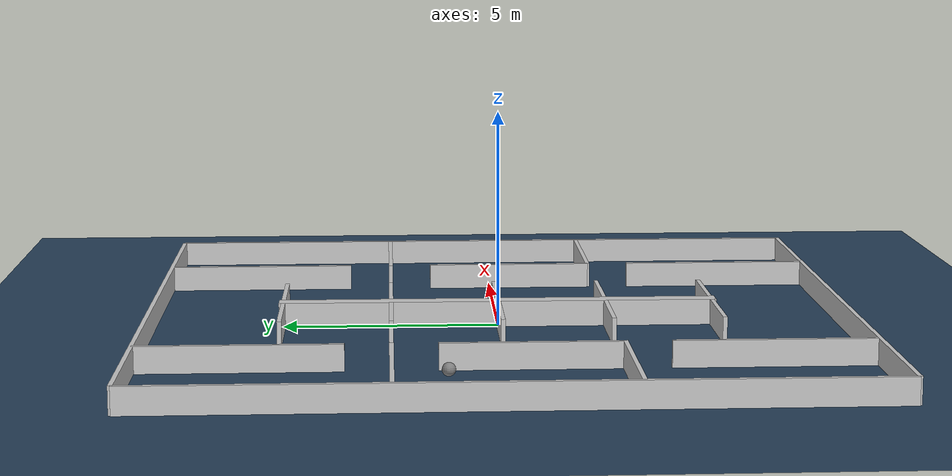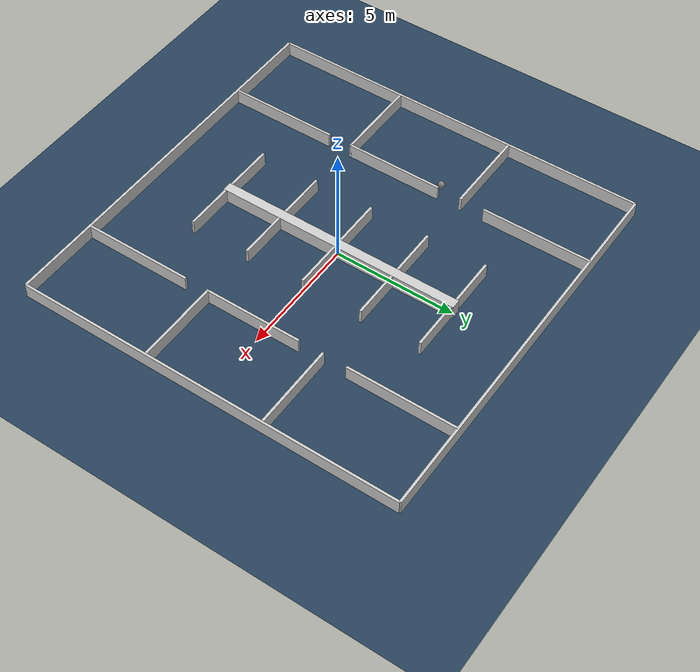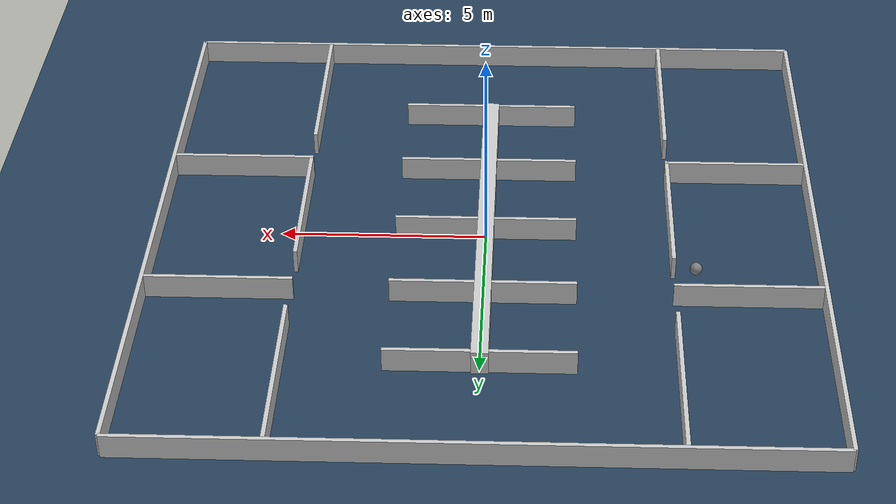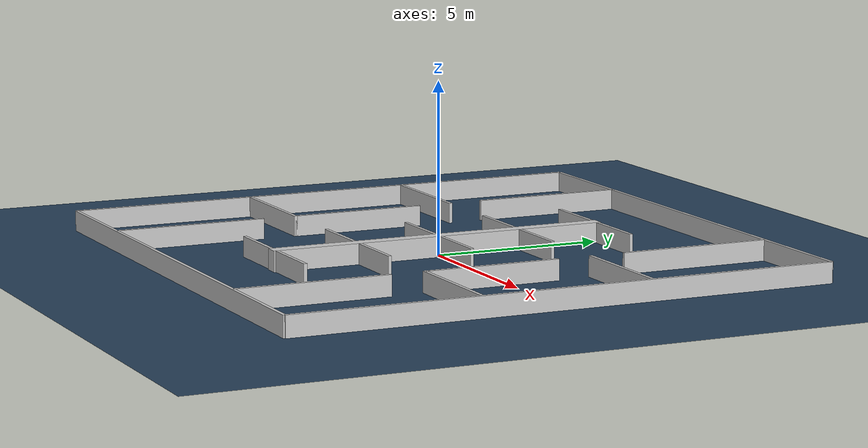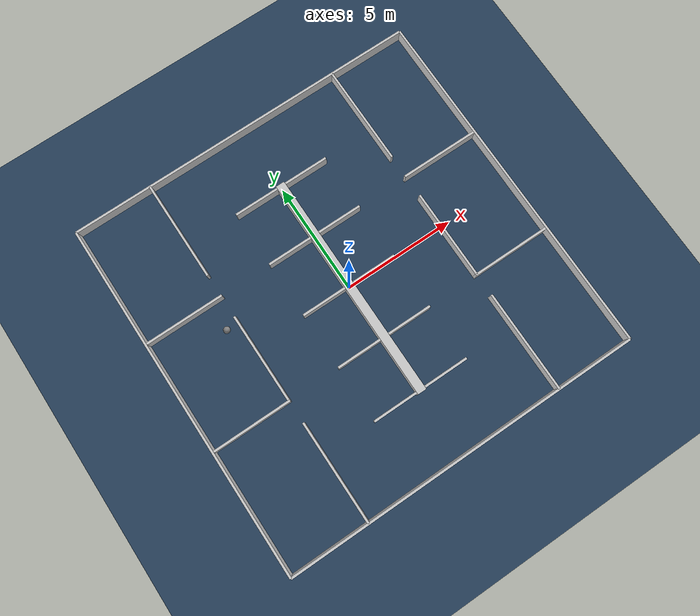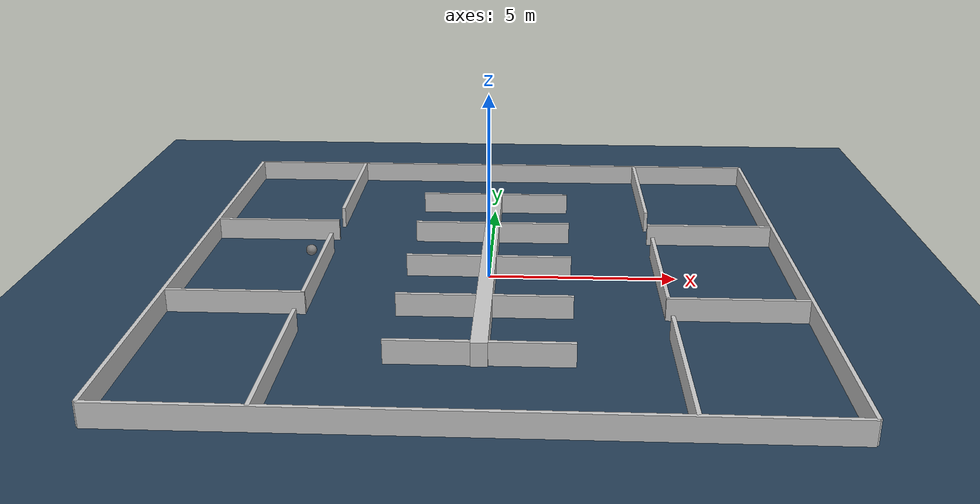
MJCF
<?xml version='1.0' encoding='utf-8'?>
<mujoco model="generated_environment">
  <option timestep="0.01" integrator="RK4" cone="elliptic" />
  <default>
    <geom density="1" />
  </default>
  <asset>
    <texture builtin="gradient" height="3072" rgb1="0.3 0.5 0.7" rgb2="0 0 0" type="skybox" width="512" />
    <texture builtin="checker" height="300" mark="edge" markrgb="0.8 0.8 0.8" name="groundplane" rgb1="0.2 0.3 0.4" rgb2="0.1 0.2 0.3" type="2d" width="300" />
    <material name="groundplane" reflectance="0.2" texrepeat="5 5" texture="groundplane" texuniform="true" />
    <material name="robot" rgba="1.0 1.0 0.0 1.0" />
  </asset>
  <worldbody>
    <light dir="0 0 -1" directional="true" pos="0 0 1.5" />
    <geom condim="4" friction="0.5 0.005 0.001" material="groundplane" name="floor" size="0 0 0.05" type="plane" />
    <body name="walls">
      <geom name="wall_1" condim="4" pos="-8.0 0.0 0.3" rgba="0.800000011920929 0.800000011920929 0.800000011920929 1.0" size="0.05 8.0 0.3" type="box" />
      <geom name="wall_2" condim="4" pos="8.0 0.0 0.3" rgba="0.800000011920929 0.800000011920929 0.800000011920929 1.0" size="0.05 8.0 0.3" type="box" />
      <geom name="wall_3" condim="4" pos="0.0 -8.0 0.3" rgba="0.800000011920929 0.800000011920929 0.800000011920929 1.0" size="8.0 0.05 0.3" type="box" />
      <geom name="wall_4" condim="4" pos="0.0 8.0 0.3" rgba="0.800000011920929 0.800000011920929 0.800000011920929 1.0" size="8.0 0.05 0.3" type="box" />
      <geom name="wall_5" condim="4" pos="-1.2 2.5 0.3" rgba="0.800000011920929 0.800000011920929 0.800000011920929 1.0" size="1.0 0.05 0.3" type="box" />
      <geom name="wall_6" condim="4" pos="1.2 2.5 0.3" rgba="0.800000011920929 0.800000011920929 0.800000011920929 1.0" size="1.0 0.05 0.3" type="box" />
      <geom name="wall_7" condim="4" pos="-1.2 -2.5 0.3" rgba="0.800000011920929 0.800000011920929 0.800000011920929 1.0" size="1.0 0.05 0.3" type="box" />
      <geom name="wall_8" condim="4" pos="1.2 -2.5 0.3" rgba="0.800000011920929 0.800000011920929 0.800000011920929 1.0" size="1.0 0.05 0.3" type="box" />
      <geom name="wall_9" condim="4" pos="-1.2 0.0 0.3" rgba="0.800000011920929 0.800000011920929 0.800000011920929 1.0" size="1.0 0.05 0.3" type="box" />
      <geom name="wall_10" condim="4" pos="1.2 0.0 0.3" rgba="0.800000011920929 0.800000011920929 0.800000011920929 1.0" size="1.0 0.05 0.3" type="box" />
      <geom name="wall_11" condim="4" pos="-1.2 5.0 0.3" rgba="0.800000011920929 0.800000011920929 0.800000011920929 1.0" size="1.0 0.05 0.3" type="box" />
      <geom name="wall_12" condim="4" pos="1.2 5.0 0.3" rgba="0.800000011920929 0.800000011920929 0.800000011920929 1.0" size="1.0 0.05 0.3" type="box" />
      <geom name="wall_13" condim="4" pos="-1.2 -5.0 0.3" rgba="0.800000011920929 0.800000011920929 0.800000011920929 1.0" size="1.0 0.05 0.3" type="box" />
      <geom name="wall_14" condim="4" pos="1.2 -5.0 0.3" rgba="0.800000011920929 0.800000011920929 0.800000011920929 1.0" size="1.0 0.05 0.3" type="box" />
      <geom name="wall_15" condim="4" pos="0.0 0.0 0.3" rgba="0.800000011920929 0.800000011920929 0.800000011920929 1.0" size="0.2 5.1 0.3" type="box" />
      <geom name="wall_16" condim="4" pos="-4.5 5.75 0.3" rgba="0.800000011920929 0.800000011920929 0.800000011920929 1.0" size="0.05 2.25 0.3" type="box" />
      <geom name="wall_17" condim="4" pos="-6.2 2.5 0.3" rgba="0.800000011920929 0.800000011920929 0.800000011920929 1.0" size="1.75 0.05 0.3" type="box" />
      <geom name="wall_18" condim="4" pos="-4.5 -5.75 0.3" rgba="0.800000011920929 0.800000011920929 0.800000011920929 1.0" size="0.05 2.25 0.3" type="box" />
      <geom name="wall_19" condim="4" pos="-6.2 -2.5 0.3" rgba="0.800000011920929 0.800000011920929 0.800000011920929 1.0" size="1.75 0.05 0.3" type="box" />
      <geom name="wall_20" condim="4" pos="-4.5 -0.5 0.3" rgba="0.800000011920929 0.800000011920929 0.800000011920929 1.0" size="0.05 2.0 0.3" type="box" />
      <geom name="wall_21" condim="4" pos="4.5 5.75 0.3" rgba="0.800000011920929 0.800000011920929 0.800000011920929 1.0" size="0.05 2.25 0.3" type="box" />
      <geom name="wall_22" condim="4" pos="6.2 2.5 0.3" rgba="0.800000011920929 0.800000011920929 0.800000011920929 1.0" size="1.75 0.05 0.3" type="box" />
      <geom name="wall_23" condim="4" pos="4.5 -5.75 0.3" rgba="0.800000011920929 0.800000011920929 0.800000011920929 1.0" size="0.05 2.25 0.3" type="box" />
      <geom name="wall_24" condim="4" pos="6.2 -2.5 0.3" rgba="0.800000011920929 0.800000011920929 0.800000011920929 1.0" size="1.75 0.05 0.3" type="box" />
      <geom name="wall_25" condim="4" pos="4.5 -0.5 0.3" rgba="0.800000011920929 0.800000011920929 0.800000011920929 1.0" size="0.05 2.0 0.3" type="box" />
    </body>
    <body name="robot">
      <joint name="joint_x" type="slide" pos="0 0 0" axis="1 0 0" />
      <joint name="joint_y" type="slide" pos="0 0 0" axis="0 1 0" />
      <geom name="robot" type="sphere" pos="-5.056335728886946 1.2968789009278936 0.15" size="0.15 0.15 0.15" mass="5.0" friction="1.0 0.005 0.0001" condim="4" />
    </body>
    </worldbody>
  <actuator>
    <motor name="actuator_x" joint="joint_x" gear="1" ctrlrange="-1 1" />
    <motor name="actuator_y" joint="joint_y" gear="1" ctrlrange="-1 1" />
  </actuator>
</mujoco>
